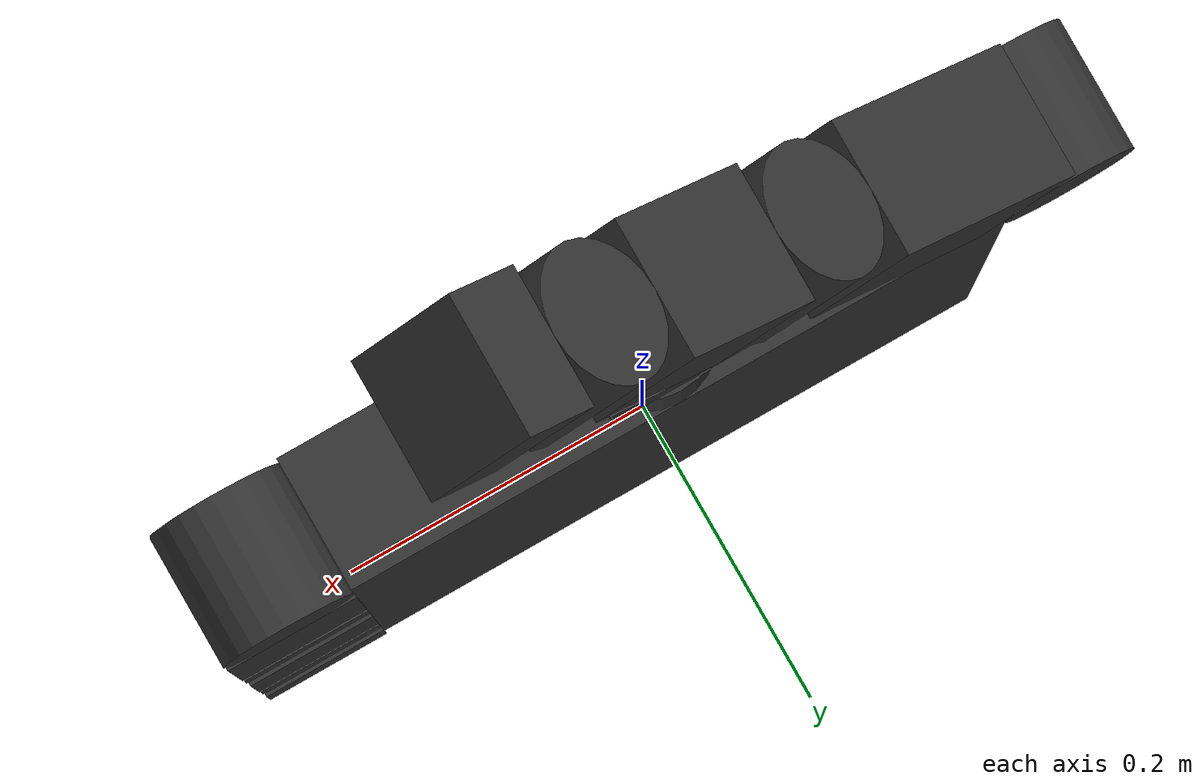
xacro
<?xml version="1.0"?>
<robot name="follower" xmlns:xacro="http://www.ros.org/wiki/xacro">
  <xacro:arg name="prefix" default="" />
  <xacro:arg name="use_sim" default="false" />
  <xacro:arg name="use_mock_hardware" default="false" />
  <xacro:arg name="mock_sensor_commands" default="false" />
  <xacro:arg name="config_type" default="follower" />
  <xacro:arg name="ros2_control_type" default="follower" />
  <xacro:arg name="port_name" default="/dev/ttyACM0" />

  <xacro:include filename="$(find avatar_description)/gazebo/follower.gazebo.xacro" />
  <xacro:include filename="$(find avatar_description)/urdf/follower/follower_arm.urdf.xacro" />
  <xacro:include filename="$(find avatar_description)/ros2_control/$(arg ros2_control_type).ros2_control.xacro" />

  <link name="world"/>

  <joint name="$(arg prefix)world_fixed" type="fixed">
    <parent link="world"/>
    <child link="$(arg prefix)link0"/>
    <origin xyz="0.0 0.0 0.0" rpy="0 0 0"/>
  </joint>

  <!-- 2-DOF에는 end_effector 고정조인트가 필요 없으면 제거 가능.
       샘플 구조를 유지하기 위해 남겨두되, link2에 고정한다고 가정 -->

  <xacro:follower prefix="$(arg prefix)" />
  <xacro:follower_gazebo prefix="$(arg prefix)" />

  <xacro:follower_system
    name="FollowerSystem" prefix="$(arg prefix)" use_sim="$(arg use_sim)"
    use_mock_hardware="$(arg use_mock_hardware)"
    mock_sensor_commands="$(arg mock_sensor_commands)"
    port_name="$(arg port_name)"/>

  <gazebo>
    <plugin filename="gz_ros2_control-system" name="gz_ros2_control::GazeboSimROS2ControlPlugin">
      <parameters>$(find avatar_bringup)/config/$(arg config_type)/hardware_controller_manager.yaml</parameters>
    </plugin>
  </gazebo>

</robot>

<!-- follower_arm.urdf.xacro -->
<robot xmlns:xacro="http://www.ros.org/wiki/xacro">
  <xacro:macro name="follower" params="prefix">

    <xacro:property name="robot_thickness" value="0.08" />
    <xacro:property name="body_height" value="0.5" />
    <xacro:property name="body_width" value="0.4" />
    <xacro:property name="arm1_height" value="0.15"/>
    <xacro:property name="arm2_height" value="0.10"/>
    <xacro:property name="gripper_height" value="0.05"/>

    <!-- link0 -->
    <link name="${prefix}link0" >
      <visual>
        <origin xyz="0 0 ${body_height/2}" rpy="0 0 0" />
        <geometry>
          <box size="${body_width} ${robot_thickness} ${body_height}" />
        </geometry>
        <material name="grey">
          <color rgba="0.2 0.2 0.2 1" />
        </material>
      </visual>
      <collision>
        <origin xyz="0 0 ${body_height/2}" rpy="0 0 0" />
        <geometry>
          <box size="${body_width} ${robot_thickness} ${body_height}" />
        </geometry>
      </collision>
      <inertial>
        <origin xyz="0 0 0" />
        <mass value="2.0e-1" />
        <inertia ixx="1e-4" ixy="0" ixz="0" iyy="1e-4" iyz="0" izz="1e-4" />
      </inertial>
    </link>
    <!-- right arm -->
    <!-- joint1 -->
    <joint name="${prefix}right_joint1" type="revolute">
      <parent link="${prefix}link0" />
      <child link="${prefix}right_link1" />
      <origin xyz="${body_width/2} 0 ${body_height - robot_thickness/2}" rpy="0 0 0" />
      <axis xyz="1 0 0" />
      <limit velocity="4.8" effort="1000" lower="${-pi}" upper="${pi}" />
      <dynamics damping="0.05" />
    </joint>

    <!-- link1 -->
    <link name="${prefix}right_link1" >
      <visual>
        <origin xyz="${robot_thickness/2} 0 0" rpy="${pi/2} 0 0" />
        <geometry>
          <cylinder radius="${robot_thickness/2}" length="${robot_thickness}"/>
        </geometry>
        <material name="grey">
          <color rgba="0.2 0.2 0.2 1" />
        </material>
      </visual>
      <collision>
        <origin xyz="${robot_thickness/2} 0 0" rpy="${pi/2} 0 0" />
        <geometry>
          <cylinder radius="${robot_thickness/2}" length="${robot_thickness}"/>
        </geometry>
      </collision>
      <inertial>
        <origin xyz="0 0 0.05" />
        <mass value="1.0e-1" />
        <inertia ixx="5e-5" ixy="0" ixz="0" iyy="5e-5" iyz="0" izz="1e-5" />
      </inertial>
    </link>

    <!-- joint2 -->
    <joint name="${prefix}right_joint2" type="revolute">
      <parent link="${prefix}right_link1" />
      <child link="${prefix}right_link2" />
      <origin xyz="${robot_thickness/2} 0 0" rpy="0 0 0" />
      <axis xyz="0 1 0" />
      <limit velocity="4.8" effort="1000" lower="${-pi}" upper="${pi/2}" />
      <dynamics damping="0.1" />
    </joint>

    <!-- link2 -->
    <link name="${prefix}right_link2" >
      <visual>
        <origin xyz="0 0 ${-robot_thickness/2 - arm1_height/2}" rpy="0 0 0" />
        <geometry>
          <box size="${robot_thickness} ${robot_thickness} ${arm1_height}" />
        </geometry>
        <material name="grey">
          <color rgba="0.2 0.2 0.2 1" />
        </material>
      </visual>
      <collision>
        <origin xyz="0 0 ${-robot_thickness/2 - arm1_height/2}" rpy="0 0 0" />
        <geometry>
          <box size="${robot_thickness} ${robot_thickness} ${arm1_height}" />
        </geometry>
      </collision>
      <inertial>
        <origin xyz="0 0 0.05" />
        <mass value="8.0e-2" />
        <inertia ixx="4e-5" ixy="0" ixz="0" iyy="4e-5" iyz="0" izz="8e-6" />
      </inertial>
    </link>

    <!-- joint3 -->
    <joint name="${prefix}right_joint3" type="revolute">
      <parent link="${prefix}right_link2" />
      <child link="${prefix}right_link3" />
      <origin xyz="0 0 ${-arm1_height - robot_thickness/2}" rpy="0 0 0" />
      <axis xyz="0 0 -1" />
      <limit velocity="4.8" effort="1000" lower="${-pi/2}" upper="${pi/2}" />
      <dynamics damping="0.1" />
    </joint>

    <!-- link3 -->
    <link name="${prefix}right_link3" >
      <visual>
        <origin xyz="0 0 ${-robot_thickness/2}" rpy="${pi/2} 0 ${pi/2}" />
        <geometry>
          <cylinder radius="${robot_thickness/2}" length="${robot_thickness}"/>
        </geometry>
        <material name="grey">
          <color rgba="0.2 0.2 0.2 1" />
        </material>
      </visual>
      <collision>
        <origin xyz="0 0 ${-robot_thickness/2}" rpy="${pi/2} 0 ${pi/2}" />
        <geometry>
          <cylinder radius="${robot_thickness/2}" length="${robot_thickness}"/>
        </geometry>
      </collision>
      <inertial>
        <origin xyz="0 0 0.05" />
        <mass value="1.0e-1" />
        <inertia ixx="5e-5" ixy="0" ixz="0" iyy="5e-5" iyz="0" izz="1e-5" />
      </inertial>
    </link>

    <!-- joint4 -->
    <joint name="${prefix}right_joint4" type="revolute">
      <parent link="${prefix}right_link3" />
      <child link="${prefix}right_link4" />
      <origin xyz="0 0 ${-robot_thickness/2}" rpy="0 0 0" />
      <axis xyz="1 0 0" />
      <limit velocity="4.8" effort="1000" lower="0" upper="${pi}" />
      <dynamics damping="0.1" />
    </joint>

    <!-- link4 -->
    <link name="${prefix}right_link4" >
      <visual>
        <origin xyz="0 0 ${-robot_thickness/2 - arm2_height/2}" rpy="0 0 0" />
        <geometry>
          <box size="${robot_thickness} ${robot_thickness} ${arm2_height}" />
        </geometry>
        <material name="grey">
          <color rgba="0.2 0.2 0.2 1" />
        </material>
      </visual>
      <collision>
        <origin xyz="0 0 ${-robot_thickness/2 - arm2_height/2}" rpy="0 0 0" />
        <geometry>
          <box size="${robot_thickness} ${robot_thickness} ${arm2_height}" />
        </geometry>
      </collision>
      <inertial>
        <origin xyz="0 0 0.05" />
        <mass value="8.0e-2" />
        <inertia ixx="4e-5" ixy="0" ixz="0" iyy="4e-5" iyz="0" izz="8e-6" />
      </inertial>
    </link>

     <!-- joint5 -->
    <joint name="${prefix}right_joint5" type="revolute">
      <parent link="${prefix}right_link4" />
      <child link="${prefix}right_link5" />
      <origin xyz="0 0 ${-arm2_height - robot_thickness/2}" rpy="0 0 0" />
      <axis xyz="0 0 -1" />
      <limit velocity="4.8" effort="1000" lower="${-pi/2}" upper="${pi/2}" />
      <dynamics damping="0.1" />
    </joint>

    <!-- link5 -->
    <link name="${prefix}right_link5" >
      <visual>
        <origin xyz="0 0 ${-robot_thickness/2}" rpy="${pi/2} 0 ${pi/2}" />
        <geometry>
          <cylinder radius="${robot_thickness/2}" length="${robot_thickness}"/>
        </geometry>
        <material name="grey">
          <color rgba="0.2 0.2 0.2 1" />
        </material>
      </visual>
      <collision>
        <origin xyz="0 0 ${-robot_thickness/2}" rpy="${pi/2} 0 ${pi/2}" />
        <geometry>
          <cylinder radius="${robot_thickness/2}" length="${robot_thickness}"/>
        </geometry>
      </collision>
      <inertial>
        <origin xyz="0 0 0.05" />
        <mass value="1.0e-1" />
        <inertia ixx="5e-5" ixy="0" ixz="0" iyy="5e-5" iyz="0" izz="1e-5" />
      </inertial>
    </link>

    <!-- joint6 -->
    <joint name="${prefix}right_joint6" type="revolute">
      <parent link="${prefix}right_link5" />
      <child link="${prefix}right_link6" />
      <origin xyz="0 0 ${-robot_thickness/2}" rpy="0 0 0" />
      <axis xyz="1 0 0" />
      <limit velocity="4.8" effort="1000" lower="${-pi/2}" upper="${pi/2}" />
      <dynamics damping="0.1" />
    </joint>

    <!-- link6 -->
    <link name="${prefix}right_link6" >
      <visual>
        <origin xyz="0 0 ${-robot_thickness/2 - gripper_height/2}" rpy="0 0 0" />
        <geometry>
          <box size="${robot_thickness} ${robot_thickness} ${gripper_height}" />
        </geometry>
        <material name="grey">
          <color rgba="0.2 0.2 0.2 1" />
        </material>
      </visual>
      <collision>
        <origin xyz="0 0 ${-robot_thickness/2 - gripper_height/2}" rpy="0 0 0" />
        <geometry>
          <box size="${robot_thickness} ${robot_thickness} ${gripper_height}" />
        </geometry>
      </collision>
      <inertial>
        <origin xyz="0 0 0.05" />
        <mass value="8.0e-2" />
        <inertia ixx="4e-5" ixy="0" ixz="0" iyy="4e-5" iyz="0" izz="8e-6" />
      </inertial>
    </link>

    <!-- left arm -->
    <!-- joint1 -->
    <joint name="${prefix}left_joint1" type="revolute">
      <parent link="${prefix}link0" />
      <child link="${prefix}left_link1" />
      <origin xyz="${-body_width/2} 0 ${body_height - robot_thickness/2}" rpy="0 0 0" />
      <axis xyz="1 0 0" />
      <limit velocity="4.8" effort="1000" lower="${-pi}" upper="${pi}" />
      <dynamics damping="0.05" />
    </joint>

    <!-- link1 -->
    <link name="${prefix}left_link1" >
      <visual>
        <origin xyz="${-robot_thickness/2} 0 0" rpy="${pi/2} 0 0" />
        <geometry>
          <cylinder radius="${robot_thickness/2}" length="${robot_thickness}"/>
        </geometry>
        <material name="grey">
          <color rgba="0.2 0.2 0.2 1" />
        </material>
      </visual>
      <collision>
        <origin xyz="${-robot_thickness/2} 0 0" rpy="${pi/2} 0 0" />
        <geometry>
          <cylinder radius="${robot_thickness/2}" length="${robot_thickness}"/>
        </geometry>
      </collision>
      <inertial>
        <origin xyz="0 0 0.05" />
        <mass value="1.0e-1" />
        <inertia ixx="5e-5" ixy="0" ixz="0" iyy="5e-5" iyz="0" izz="1e-5" />
      </inertial>
    </link>

    <!-- joint2 -->
    <joint name="${prefix}left_joint2" type="revolute">
      <parent link="${prefix}left_link1" />
      <child link="${prefix}left_link2" />
      <origin xyz="${-robot_thickness/2} 0 0" rpy="0 0 0" />
      <axis xyz="0 1 0" />
      <limit velocity="4.8" effort="1000" lower="${-pi/2}" upper="${-pi}" />
      <dynamics damping="0.1" />
    </joint>

    <!-- link2 -->
    <link name="${prefix}left_link2" >
      <visual>
        <origin xyz="0 0 ${-robot_thickness/2 - arm1_height/2}" rpy="0 0 0" />
        <geometry>
          <box size="${robot_thickness} ${robot_thickness} ${arm1_height}" />
        </geometry>
        <material name="grey">
          <color rgba="0.2 0.2 0.2 1" />
        </material>
      </visual>
      <collision>
        <origin xyz="0 0 ${-robot_thickness/2 - arm1_height/2}" rpy="0 0 0" />
        <geometry>
          <box size="${robot_thickness} ${robot_thickness} ${arm1_height}" />
        </geometry>
      </collision>
      <inertial>
        <origin xyz="0 0 0.05" />
        <mass value="8.0e-2" />
        <inertia ixx="4e-5" ixy="0" ixz="0" iyy="4e-5" iyz="0" izz="8e-6" />
      </inertial>
    </link>

    <!-- joint3 -->
    <joint name="${prefix}left_joint3" type="revolute">
      <parent link="${prefix}left_link2" />
      <child link="${prefix}left_link3" />
      <origin xyz="0 0 ${-arm1_height - robot_thickness/2}" rpy="0 0 0" />
      <axis xyz="0 0 -1" />
      <limit velocity="4.8" effort="1000" lower="${-pi/2}" upper="${pi/2}" />
      <dynamics damping="0.1" />
    </joint>

    <!-- link3 -->
    <link name="${prefix}left_link3" >
      <visual>
        <origin xyz="0 0 ${-robot_thickness/2}" rpy="${pi/2} 0 ${pi/2}" />
        <geometry>
          <cylinder radius="${robot_thickness/2}" length="${robot_thickness}"/>
        </geometry>
        <material name="grey">
          <color rgba="0.2 0.2 0.2 1" />
        </material>
      </visual>
      <collision>
        <origin xyz="0 0 ${-robot_thickness/2}" rpy="${pi/2} 0 ${pi/2}" />
        <geometry>
          <cylinder radius="${robot_thickness/2}" length="${robot_thickness}"/>
        </geometry>
      </collision>
      <inertial>
        <origin xyz="0 0 0.05" />
        <mass value="1.0e-1" />
        <inertia ixx="5e-5" ixy="0" ixz="0" iyy="5e-5" iyz="0" izz="1e-5" />
      </inertial>
    </link>

    <!-- joint4 -->
    <joint name="${prefix}left_joint4" type="revolute">
      <parent link="${prefix}left_link3" />
      <child link="${prefix}left_link4" />
      <origin xyz="0 0 ${-robot_thickness/2}" rpy="0 0 0" />
      <axis xyz="1 0 0" />
      <limit velocity="4.8" effort="1000" lower="0" upper="${pi}" />
      <dynamics damping="0.1" />
    </joint>

    <!-- link4 -->
    <link name="${prefix}left_link4" >
      <visual>
        <origin xyz="0 0 ${-robot_thickness/2 - arm2_height/2}" rpy="0 0 0" />
        <geometry>
          <box size="${robot_thickness} ${robot_thickness} ${arm2_height}" />
        </geometry>
        <material name="grey">
          <color rgba="0.2 0.2 0.2 1" />
        </material>
      </visual>
      <collision>
        <origin xyz="0 0 ${-robot_thickness/2 - arm2_height/2}" rpy="0 0 0" />
        <geometry>
          <box size="${robot_thickness} ${robot_thickness} ${arm2_height}" />
        </geometry>
      </collision>
      <inertial>
        <origin xyz="0 0 0.05" />
        <mass value="8.0e-2" />
        <inertia ixx="4e-5" ixy="0" ixz="0" iyy="4e-5" iyz="0" izz="8e-6" />
      </inertial>
    </link>

     <!-- joint5 -->
    <joint name="${prefix}left_joint5" type="revolute">
      <parent link="${prefix}left_link4" />
      <child link="${prefix}left_link5" />
      <origin xyz="0 0 ${-arm2_height - robot_thickness/2}" rpy="0 0 0" />
      <axis xyz="0 0 -1" />
      <limit velocity="4.8" effort="1000" lower="${-pi/2}" upper="${pi/2}" />
      <dynamics damping="0.1" />
    </joint>

    <!-- link5 -->
    <link name="${prefix}left_link5" >
      <visual>
        <origin xyz="0 0 ${-robot_thickness/2}" rpy="${pi/2} 0 ${pi/2}" />
        <geometry>
          <cylinder radius="${robot_thickness/2}" length="${robot_thickness}"/>
        </geometry>
        <material name="grey">
          <color rgba="0.2 0.2 0.2 1" />
        </material>
      </visual>
      <collision>
        <origin xyz="0 0 ${-robot_thickness/2}" rpy="${pi/2} 0 ${pi/2}" />
        <geometry>
          <cylinder radius="${robot_thickness/2}" length="${robot_thickness}"/>
        </geometry>
      </collision>
      <inertial>
        <origin xyz="0 0 0.05" />
        <mass value="1.0e-1" />
        <inertia ixx="5e-5" ixy="0" ixz="0" iyy="5e-5" iyz="0" izz="1e-5" />
      </inertial>
    </link>

    <!-- joint6 -->
    <joint name="${prefix}left_joint6" type="revolute">
      <parent link="${prefix}left_link5" />
      <child link="${prefix}left_link6" />
      <origin xyz="0 0 ${-robot_thickness/2}" rpy="0 0 0" />
      <axis xyz="1 0 0" />
      <limit velocity="4.8" effort="1000" lower="${-pi/2}" upper="${pi/2}" />
      <dynamics damping="0.1" />
    </joint>

    <!-- link6 -->
    <link name="${prefix}left_link6" >
      <visual>
        <origin xyz="0 0 ${-robot_thickness/2 - gripper_height/2}" rpy="0 0 0" />
        <geometry>
          <box size="${robot_thickness} ${robot_thickness} ${gripper_height}" />
        </geometry>
        <material name="grey">
          <color rgba="0.2 0.2 0.2 1" />
        </material>
      </visual>
      <collision>
        <origin xyz="0 0 ${-robot_thickness/2 - gripper_height/2}" rpy="0 0 0" />
        <geometry>
          <box size="${robot_thickness} ${robot_thickness} ${gripper_height}" />
        </geometry>
      </collision>
      <inertial>
        <origin xyz="0 0 0.05" />
        <mass value="8.0e-2" />
        <inertia ixx="4e-5" ixy="0" ixz="0" iyy="4e-5" iyz="0" izz="8e-6" />
      </inertial>
    </link>

    <!-- neck -->
    <!-- joint1 -->
    <joint name="${prefix}neck_joint1" type="revolute">
      <parent link="${prefix}link0" />
      <child link="${prefix}neck_link1" />
      <origin xyz="0 0 ${body_height}" rpy="0 0 0" />
      <axis xyz="1 0 0" />
      <limit velocity="4.8" effort="1000" lower="${-pi/2}" upper="${pi/2}" />
      <dynamics damping="0.1" />
    </joint>
    <!-- link1 -->
    <link name="${prefix}neck_link1" >
      <visual>
        <origin xyz="0 0 ${robot_thickness/2}" rpy="0 0 0" />
        <geometry>
          <cylinder radius="${robot_thickness/2}" length="${robot_thickness}"/>
        </geometry>
        <material name="grey">
          <color rgba="0.2 0.2 0.2 1" />
        </material>
      </visual>
      <collision>
        <origin xyz="0 0 ${robot_thickness/2}" rpy="0 0 0" />
        <geometry>
          <cylinder radius="${robot_thickness/2}" length="${robot_thickness}"/>
        </geometry>
      </collision>
      <inertial>
        <origin xyz="0 0 0.05" />
        <mass value="1.0e-1" />
        <inertia ixx="5e-5" ixy="0" ixz="0" iyy="5e-5" iyz="0" izz="1e-5" />
      </inertial>
    </link>

    <!-- joint2 -->
    <joint name="${prefix}neck_joint2" type="revolute">
      <parent link="${prefix}neck_link1" />
      <child link="${prefix}neck_link2" />
      <origin xyz="0 0 ${robot_thickness}" rpy="0 0 0" />
      <axis xyz="0 0 1" />
      <limit velocity="4.8" effort="1000" lower="${-pi/2}" upper="${pi/2}" />
      <dynamics damping="0.1" />
    </joint>
    <!-- link2 -->
    <link name="${prefix}neck_link2" >
      <visual>
        <origin xyz="0 0 ${robot_thickness/2}" rpy="${pi/2} 0 ${pi/2}" />
        <geometry>
          <cylinder radius="${robot_thickness/2}" length="${robot_thickness}"/>
        </geometry>
        <material name="grey">
          <color rgba="0.2 0.2 0.2 1" />
        </material>
      </visual>
      <collision>
        <origin xyz="0 0 ${-robot_thickness/2}" rpy="${pi/2} 0 ${pi/2}" />
        <geometry>
          <cylinder radius="${robot_thickness/2}" length="${robot_thickness}"/>
        </geometry>
      </collision>
      <inertial>
        <origin xyz="0 0 0.05" />
        <mass value="1.0e-1" />
        <inertia ixx="5e-5" ixy="0" ixz="0" iyy="5e-5" iyz="0" izz="1e-5" />
      </inertial>
    </link>

  </xacro:macro>
</robot>
